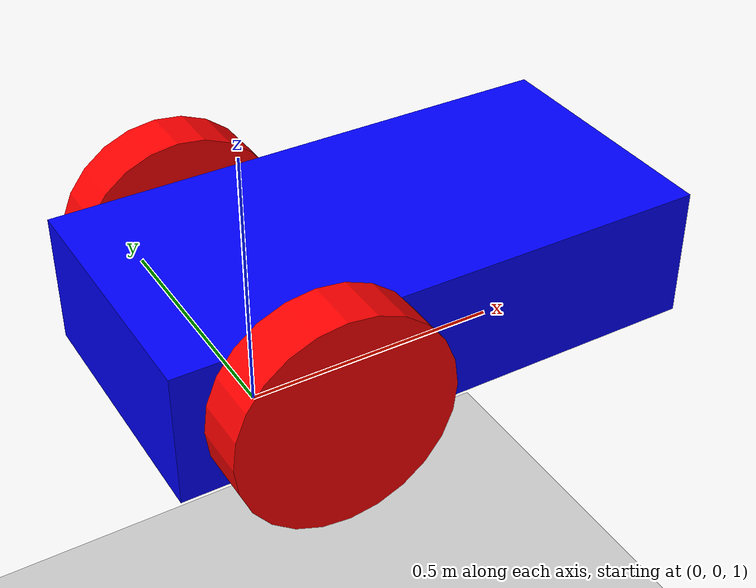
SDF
<sdf version="1.8">
 <world name="warehouse_world">
  <physics name="1ms" type="ignored">
   <max_step_size>0.001</max_step_size>
   <real_time_factor>1.0</real_time_factor>
  </physics>
  <plugin filename="gz-sim-physics-system" name="gz::sim::systems::Physics"/>
  <plugin filename="gz-sim-user-commands-system" name="gz::sim::systems::UserCommands"/>
  <plugin filename="gz-sim-scene-broadcaster-system" name="gz::sim::systems::SceneBroadcaster"/>
  <plugin filename="gz-sim-imu-system" name="gz::sim::systems::Imu"/>
  <plugin filename="gz-sim-sensors-system" name="gz::sim::systems::Sensors">
   <render_engine>ogre2</render_engine>
  </plugin>
  <plugin filename="gz-sim-contact-system" name="gz::sim::systems::Contact"/>
  <light type="directional" name="sun">
   <pose>0 0 10 0 0 0</pose>
   <diffuse>0.8 0.8 0.8 1</diffuse>
   <specular>0.2 0.2 0.2 1</specular>
   <attenuation>
    <range>1000</range>
    <constant>0.9</constant>
    <linear>0.01</linear>
    <quadratic>0.001</quadratic>
   </attenuation>
   <direction>-0.5 0.1 -0.9</direction>
  </light>
  <model name="ground_plane">
   <static>true</static>
   <link name="link">
    <collision name="collision"><geometry><plane><normal>0 0 1</normal></plane></geometry></collision>
    <visual name="visual">
     <geometry><plane><normal>0 0 1</normal><size>100 100</size></plane></geometry>
     <material>
      <ambient>0.8 0.8 0.8 1</ambient>
      <diffuse>0.8 0.8 0.8 1</diffuse>
      <specular>0.8 0.8 0.8 1</specular>
     </material>
    </visual>
   </link>
  </model>
  <include><uri>blue_robot.sdf</uri><name>blue_robot</name><pose>0 0 1 0 0 0</pose></include>
  <plugin filename="gz-sim-triggered-publisher-system" name="gz::sim::systems::TriggeredPublisher">
   <input type="gz.msgs.Int32" topic="/keyboard/keypress"><match field="data">16777234</match></input>
   <output type="gz.msgs.Twist" topic="/cmd_vel">linear: {x: 0.0}, angular: {z: 0.5}</output>
  </plugin>
  <plugin filename="gz-sim-triggered-publisher-system" name="gz::sim::systems::TriggeredPublisher">
   <input type="gz.msgs.Int32" topic="/keyboard/keypress"><match field="data">16777235</match></input>
   <output type="gz.msgs.Twist" topic="/cmd_vel">linear: {x: 0.5}, angular: {z: 0.0}</output>
  </plugin>
  <plugin filename="gz-sim-triggered-publisher-system" name="gz::sim::systems::TriggeredPublisher">
   <input type="gz.msgs.Int32" topic="/keyboard/keypress"><match field="data">16777236</match></input>
   <output type="gz.msgs.Twist" topic="/cmd_vel">linear: {x: 0.0}, angular: {z: -0.5}</output>
  </plugin>
  <plugin filename="gz-sim-triggered-publisher-system" name="gz::sim::systems::TriggeredPublisher">
   <input type="gz.msgs.Int32" topic="/keyboard/keypress"><match field="data">16777237</match></input>
   <output type="gz.msgs.Twist" topic="/cmd_vel">linear: {x: -0.5}, angular: {z: 0.0}</output>
  </plugin>
  <plugin filename="gz-sim-triggered-publisher-system" name="gz::sim::systems::TriggeredPublisher">
   <input type="gz.msgs.Boolean" topic="/wall/touched"><match>data: true</match></input>
   <output type="gz.msgs.Twist" topic="/cmd_vel">linear: {x: 0.0}, angular: {z: 0.0}</output>
  </plugin>
 </world>
</sdf>

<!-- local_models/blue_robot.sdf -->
<sdf version="1.8">
    <model name='vehicle_blue' canonical_link='chassis'>

        <frame name="lidar_frame" attached_to='chassis'>
            <pose>0.4 0 0.25 0 0 0</pose>
        </frame>

        <link name='chassis'>
            <pose relative_to='__model__'>0.25 0 0.2 0 0 0</pose>
            <inertial> <!--inertial
                properties of the link mass, inertia matix-->
                <mass>1.14395</mass>
                <inertia>
                    <ixx>0.126164</ixx>
                    <ixy>0</ixy>
                    <ixz>0</ixz>
                    <iyy>0.416519</iyy>
                    <iyz>0</iyz>
                    <izz>0.481014</izz>
                </inertia>
            </inertial>
            <visual name='visual'>
                <geometry>
                    <box>
                        <size>1.0 0.5 0.25</size> <!--question:
                        this size is in meter-->
                    </box>
                </geometry>
                <!--let's
                add color to our link-->
                <material>
                    <ambient>0.0 0.0 1.0 1</ambient>
                    <diffuse>0.0 0.0 1.0 1</diffuse>
                    <specular>0.0 0.0 1.0 1</specular>
                </material>
            </visual>
            <collision name='collision'> <!--todo:
                describe why we need the collision-->
                <geometry>
                    <box>
                        <size>1.0 0.5 0.25</size>
                    </box>
                </geometry>
            </collision>
            <sensor name="imu_sensor" type="imu">
                <always_on>1</always_on>
                <update_rate>1</update_rate>
                <visualize>true</visualize>
                <topic>imu</topic>
            </sensor>
            <sensor name='gpu_lidar' type='gpu_lidar'>" <pose relative_to='lidar_frame'>0 0 0 0 0 0</pose>
                    <topic>
                lidar</topic>
                    <update_rate>10</update_rate>
                    <ray>
                    <scan>
                        <horizontal>
                            <samples>100</samples>
                            <resolution>1</resolution>
                            <min_angle>-2.7</min_angle>
                            <max_angle>2.7</max_angle>
                        </horizontal>
                        <vertical>
                            <samples>1</samples>
                            <resolution>0.5</resolution>
                            <min_angle>0</min_angle>
                            <max_angle>0</max_angle>
                        </vertical>
                    </scan>
                    <range>
                        <min>0.08</min>
                        <max>5.0</max>
                        <resolution>0.01</resolution>
                    </range>
                </ray>
                    <always_on>
                1</always_on>
                    <visualize>true</visualize>
            </sensor>
        </link>

        <!--let's
        build the left wheel-->
        <link name='left_wheel'>
            <pose relative_to="chassis">-0.25 0.3 0 -1.5707 0 0</pose> <!--angles
            are in radian-->
            <inertial>
                <mass>2</mass>
                <inertia>
                    <ixx>0.145833</ixx>
                    <ixy>0</ixy>
                    <ixz>0</ixz>
                    <iyy>0.145833</iyy>
                    <iyz>0</iyz>
                    <izz>0.125</izz>
                </inertia>
            </inertial>
            <visual name='visual'>
                <geometry>
                    <cylinder>
                        <radius>0.2</radius>
                        <length>0.1</length>
                    </cylinder>
                </geometry>
                <material>
                    <ambient>1.0 0.0 0.0 1</ambient>
                    <diffuse>1.0 0.0 0.0 1</diffuse>
                    <specular>1.0 0.0 0.0 1</specular>
                </material>
            </visual>
            <collision name='collision'>
                <geometry>
                    <cylinder>
                        <radius>0.2</radius>
                        <length>0.1</length>
                    </cylinder>
                </geometry>
            </collision>
        </link>

        <!--copy
        and paste for right wheel but change position-->
        <link name='right_wheel'>
            <pose relative_to="chassis">-0.25 -0.3 0 -1.5707 0 0</pose> <!--angles
            are in radian-->
            <inertial>
                <mass>1</mass>
                <inertia>
                    <ixx>0.145833</ixx>
                    <ixy>0</ixy>
                    <ixz>0</ixz>
                    <iyy>0.145833</iyy>
                    <iyz>0</iyz>
                    <izz>0.125</izz>
                </inertia>
            </inertial>
            <visual name='visual'>
                <geometry>
                    <cylinder>
                        <radius>0.2</radius>
                        <length>0.1</length>
                    </cylinder>
                </geometry>
                <material>
                    <ambient>1.0 0.0 0.0 1</ambient>
                    <diffuse>1.0 0.0 0.0 1</diffuse>
                    <specular>1.0 0.0 0.0 1</specular>
                </material>
            </visual>
            <collision name='collision'>
                <geometry>
                    <cylinder>
                        <radius>0.2</radius>
                        <length>0.1</length>
                    </cylinder>
                </geometry>
            </collision>
        </link>

        <frame name="caster_frame" attached_to='chassis'>
            <pose>0.4 0 -0.1 0 0 0</pose>
        </frame>

        <!--caster
        wheel-->
        <link name='caster'>
            <pose relative_to='caster_frame' />
            <inertial>
                <mass>1</mass>
                <inertia>
                    <ixx>0.1</ixx>
                    <ixy>0</ixy>
                    <ixz>0</ixz>
                    <iyy>0.1</iyy>
                    <iyz>0</iyz>
                    <izz>0.1</izz>
                </inertia>
            </inertial>
            <visual name='visual'>
                <geometry>
                    <sphere>
                        <radius>0.1</radius>
                    </sphere>
                </geometry>
                <material>
                    <ambient>0.0 1 0.0 1</ambient>
                    <diffuse>0.0 1 0.0 1</diffuse>
                    <specular>0.0 1 0.0 1</specular>
                </material>
            </visual>
            <collision name='collision'>
                <geometry>
                    <sphere>
                        <radius>0.1</radius>
                    </sphere>
                </geometry>
            </collision>
        </link>

        <!--connecting
        these links together using joints-->
        <joint name='left_wheel_joint' type='revolute'> <!--continous
            joint is not supported yet-->
            <pose relative_to='left_wheel' />
            <parent>chassis</parent>
            <child>left_wheel</child>
            <axis>
                <xyz expressed_in='__model__'>0 1 0</xyz> <!--can
                be descired to any frame or even arbitrary frames-->
                <limit>
                    <lower>-1.79769e+308</lower>    <!--negative
                    infinity-->
                    <upper>1.79769e+308</upper>     <!--positive
                    infinity-->
                </limit>
            </axis>
        </joint>

        <joint name='right_wheel_joint' type='revolute'>
            <pose relative_to='right_wheel' />
            <parent>chassis</parent>
            <child>right_wheel</child>
            <axis>
                <xyz expressed_in='__model__'>0 1 0</xyz>
                <limit>
                    <lower>-1.79769e+308</lower>    <!--negative
                    infinity-->
                    <upper>1.79769e+308</upper>     <!--positive
                    infinity-->
                </limit>
            </axis>
        </joint>

        <!--different
        type of joints ball joint--> <!--defult
        value is the child-->
        <joint name='caster_wheel' type='ball'>
            <parent>chassis</parent>
            <child>caster</child>
        </joint>

        <!--diff
        drive plugin-->
        <plugin
            filename="gz-sim-diff-drive-system"
            name="gz::sim::systems::DiffDrive">
            <left_joint>left_wheel_joint</left_joint>
            <right_joint>right_wheel_joint</right_joint>
            <wheel_separation>0.6</wheel_separation>
            <wheel_radius>0.2</wheel_radius>
            <odom_publish_frequency>1</odom_publish_frequency>
            <topic>cmd_vel</topic>
        </plugin>
    </model>
</sdf>
